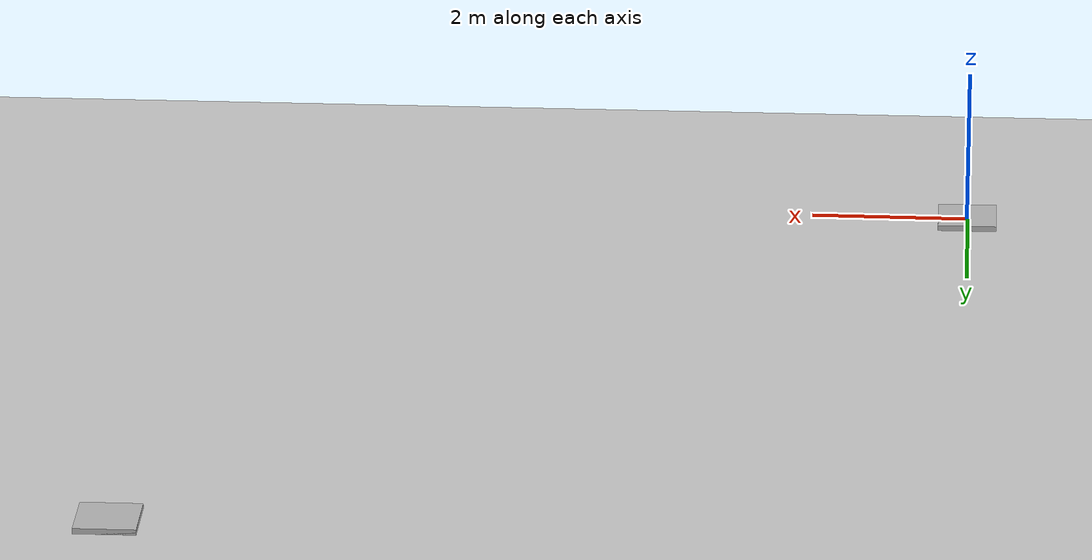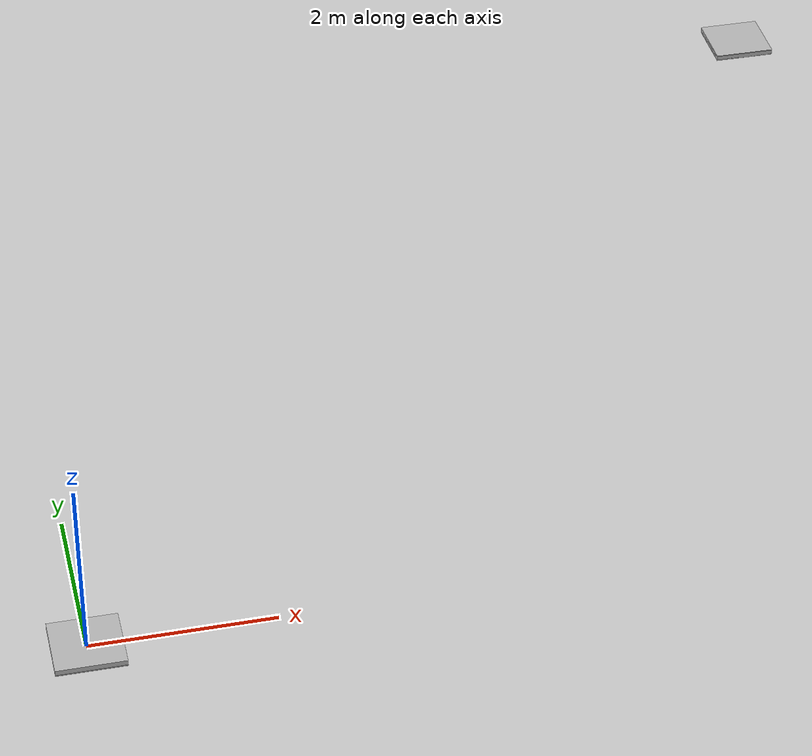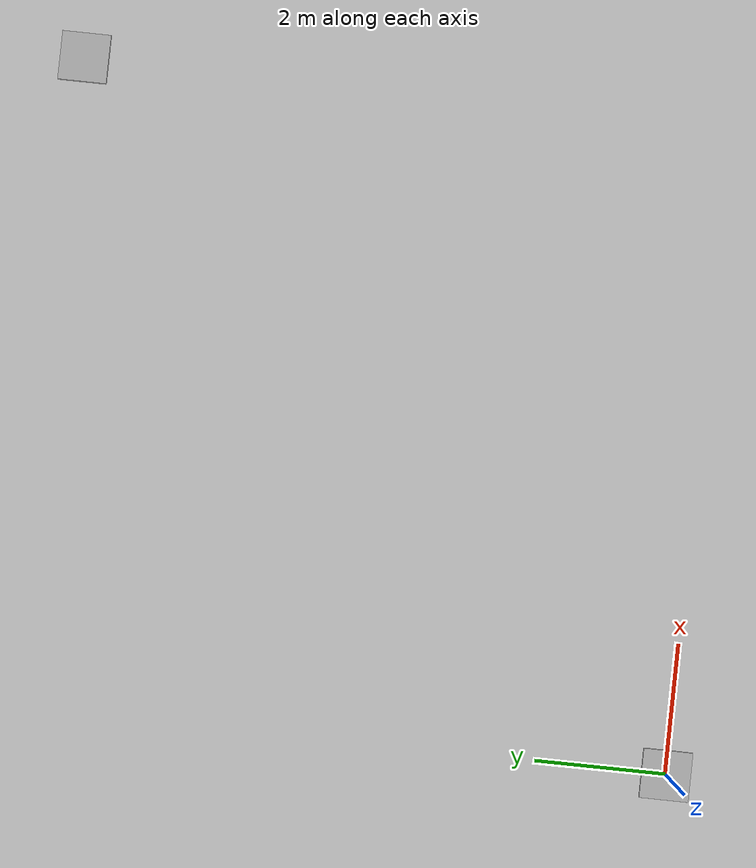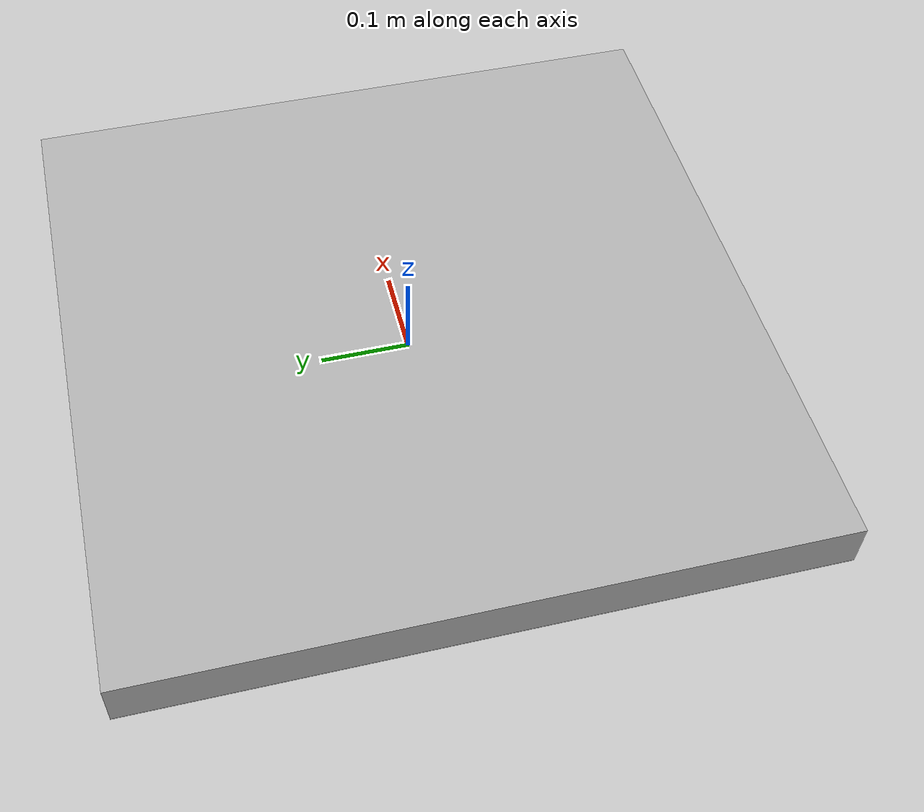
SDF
<?xml version="1.0" ?>
<sdf version="1.5">
  <world name="default">
    <!-- A global light source -->
    <include>
      <uri>model://sun</uri>
    </include>
    <!-- A ground plane -->
    <include>
      <uri>model://ground_plane</uri>
    </include>

    <include>
      <uri>model://asphalt_plane</uri>
    </include>

    <!-- Add both aruco marker models -->
    <include>
      <uri>model://aruco_6x6_0</uri>
    </include>
    <include>
      <uri>model://aruco_6x6_1</uri>
    </include>

    <physics name='default_physics' default='0' type='ode'>
      <gravity>0 0 -9.8066</gravity>
      <ode>
        <solver>
          <type>quick</type>
          <iters>10</iters>
          <sor>1.3</sor>
          <use_dynamic_moi_rescaling>0</use_dynamic_moi_rescaling>
        </solver>
        <constraints>
          <cfm>0</cfm>
          <erp>0.2</erp>
          <contact_max_correcting_vel>100</contact_max_correcting_vel>
          <contact_surface_layer>0.001</contact_surface_layer>
        </constraints>
      </ode>
      <max_step_size>0.004</max_step_size>
      <real_time_factor>1</real_time_factor>
      <real_time_update_rate>250</real_time_update_rate>
      <magnetic_field>6.0e-6 2.3e-5 -4.2e-5</magnetic_field>
    </physics>
  </world>
</sdf>

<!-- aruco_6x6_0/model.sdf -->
<sdf version="1.6">
  <model name="aruco_6x6_0">
    <static>true</static>
    <link name="link">
      <inertial>
        <pose>0 0 0.5 0 1.570796 0</pose>
        <mass>0.001</mass>
        <inertia>
          <ixx>3.7499999999999997e-06</ixx>
          <ixy>0.0</ixy>
          <ixz>0.0</ixz>
          <iyy>1.8750008333333333e-06</iyy>
          <iyz>0.0</iyz>
          <izz>1.8750008333333333e-06</izz>
        </inertia>
      </inertial>
      <visual name="front_visual">
        <pose>0 0 0.005 0 1.570796 0</pose>
        <geometry>
          <box>
            <size>0.1 0.75 0.75</size>
          </box>
        </geometry>
        <material>
          <script>
            <uri>model://aruco_6x6_0/materials/scripts</uri>
            <uri>model://aruco_6x6_0/materials/textures</uri>
            <name>marker0</name>
          </script>
        </material>
      </visual>
      <!-- Hide the marker from the back -->
      <visual name="rear_visual">
        <pose>0 0 -0.005 0 1.570796 0</pose>
        <geometry>
          <box>
            <size>0.01 0.75 0.75</size>
          </box>
        </geometry>
      </visual>
      <collision name="collision">
        <pose>0 0 0 0 1.570796 0</pose>
        <geometry>
          <box>
            <size>0.001 0.75 0.75</size>
          </box>
        </geometry>
      </collision>
    </link>
  </model>
</sdf>

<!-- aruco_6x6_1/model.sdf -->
<sdf version="1.6">
  <model name="aruco_6x6_1">
    <static>true</static>
    <link name="link">
      <inertial>
        <pose>10 10 0.5 0 1.570796 0</pose>
        <mass>0.001</mass>
        <inertia>
          <ixx>3.7499999999999997e-06</ixx>
          <ixy>0.0</ixy>
          <ixz>0.0</ixz>
          <iyy>1.8750008333333333e-06</iyy>
          <iyz>0.0</iyz>
          <izz>1.8750008333333333e-06</izz>
        </inertia>
      </inertial>
      <visual name="front_visual">
        <pose>10 10 0.005 0 1.570796 0</pose>
        <geometry>
          <box>
            <size>0.1 0.75 0.75</size>
          </box>
        </geometry>
        <material>
          <script>
            <uri>model://aruco_6x6_1/materials/scripts</uri>
            <uri>model://aruco_6x6_1/materials/textures</uri>
            <name>marker1</name>
          </script>
        </material>
      </visual>
      <!-- Hide the marker from the back -->
      <visual name="rear_visual">
        <pose>10 10 -0.005 0 1.570796 0</pose>
        <geometry>
          <box>
            <size>0.1 0.75 0.75</size>
          </box>
        </geometry>
      </visual>
      <collision name="collision">
        <pose>10 10 0 0 1.570796 0</pose>
        <geometry>
          <box>
            <size>0.001 0.75 0.75</size>
          </box>
        </geometry>
      </collision>
    </link>
  </model>
</sdf>
